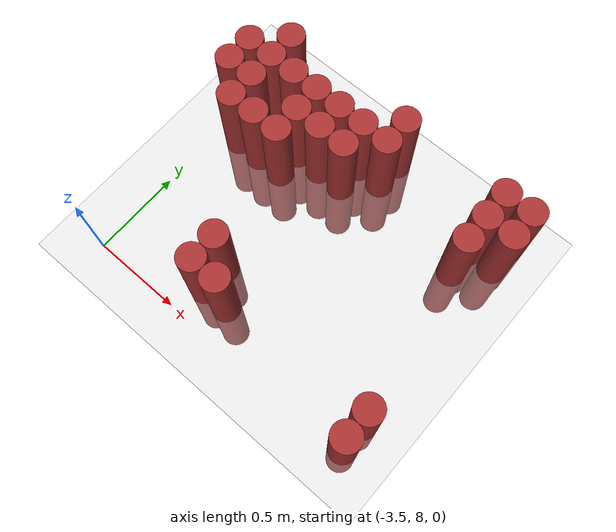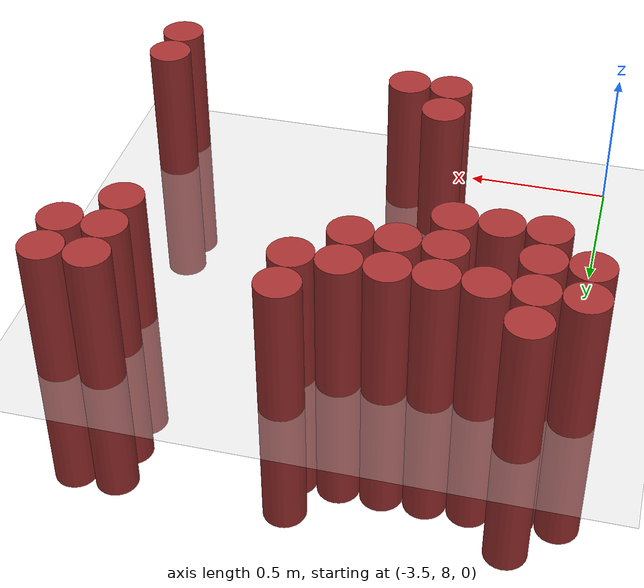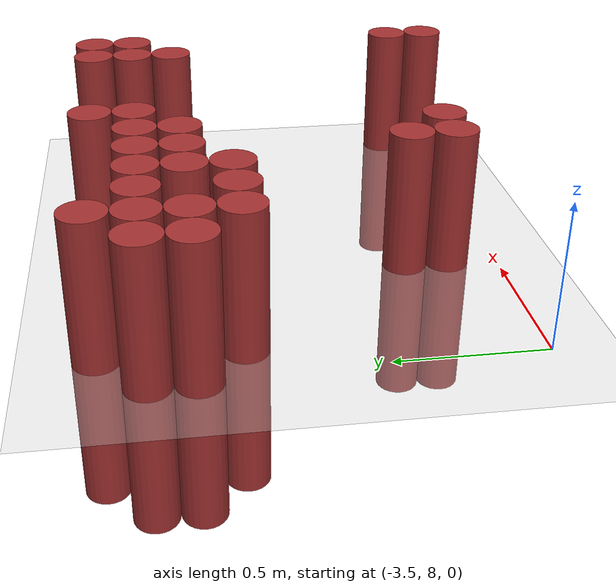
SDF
<sdf version="1.6">
 <world name="default">
  <model name="ground_plane">
   <static>1</static>
   <link name="link">
    <collision name="collision">
     <geometry><plane><normal>0 0 1</normal><size>100 100</size></plane></geometry>
     <surface><friction><ode><mu>100</mu><mu2>50</mu2></ode></friction></surface>
    </collision>
    <visual name="visual">
     <cast_shadows>0</cast_shadows>
     <geometry><plane><normal>0 0 1</normal><size>100 100</size></plane></geometry>
     <material>
      <script><uri>file://media/materials/scripts/gazebo.material</uri><name>Gazebo/Grey</name></script>
     </material>
    </visual>
   </link>
  </model>
  <model name="unit_cylinder_157">
   <static>1</static>
   <pose>-3.525000 9.075000 0.000000 0.000000 0.000000 0.000000</pose>
   <link name="link">
    <inertial>
     <mass>1</mass>
     <inertia><ixx>0.145833</ixx><ixy>0</ixy><ixz>0</ixz><iyy>0.145833</iyy><iyz>0</iyz><izz>0.125</izz></inertia>
    </inertial>
    <collision name="collision">
     <geometry><cylinder><radius>0.075000</radius><length>1</length></cylinder></geometry>
    </collision>
    <visual name="visual">
     <geometry><cylinder><radius>0.075000</radius><length>1</length></cylinder></geometry>
     <material>
      <ambient>0.648000 0.192000 0.192000 1</ambient>
      <diffuse>0.648000 0.192000 0.192000 1</diffuse>
     </material>
     <material>
      <script><name>Gazebo/Grey</name><uri>file://media/materials/scripts/gazebo.material</uri></script>
     </material>
    </visual>
   </link>
  </model>
  <model name="unit_cylinder_158">
   <static>1</static>
   <pose>-3.525000 9.225000 0.000000 0.000000 0.000000 0.000000</pose>
   <link name="link">
    <inertial>
     <mass>1</mass>
     <inertia><ixx>0.145833</ixx><ixy>0</ixy><ixz>0</ixz><iyy>0.145833</iyy><iyz>0</iyz><izz>0.125</izz></inertia>
    </inertial>
    <collision name="collision">
     <geometry><cylinder><radius>0.075000</radius><length>1</length></cylinder></geometry>
    </collision>
    <visual name="visual">
     <geometry><cylinder><radius>0.075000</radius><length>1</length></cylinder></geometry>
     <material>
      <ambient>0.648000 0.192000 0.192000 1</ambient>
      <diffuse>0.648000 0.192000 0.192000 1</diffuse>
     </material>
     <material>
      <script><name>Gazebo/Grey</name><uri>file://media/materials/scripts/gazebo.material</uri></script>
     </material>
    </visual>
   </link>
  </model>
  <model name="unit_cylinder_159">
   <static>1</static>
   <pose>-3.375000 8.925000 0.000000 0.000000 0.000000 0.000000</pose>
   <link name="link">
    <inertial>
     <mass>1</mass>
     <inertia><ixx>0.145833</ixx><ixy>0</ixy><ixz>0</ixz><iyy>0.145833</iyy><iyz>0</iyz><izz>0.125</izz></inertia>
    </inertial>
    <collision name="collision">
     <geometry><cylinder><radius>0.075000</radius><length>1</length></cylinder></geometry>
    </collision>
    <visual name="visual">
     <geometry><cylinder><radius>0.075000</radius><length>1</length></cylinder></geometry>
     <material>
      <ambient>0.648000 0.192000 0.192000 1</ambient>
      <diffuse>0.648000 0.192000 0.192000 1</diffuse>
     </material>
     <material>
      <script><name>Gazebo/Grey</name><uri>file://media/materials/scripts/gazebo.material</uri></script>
     </material>
    </visual>
   </link>
  </model>
  <model name="unit_cylinder_160">
   <static>1</static>
   <pose>-3.375000 9.075000 0.000000 0.000000 0.000000 0.000000</pose>
   <link name="link">
    <inertial>
     <mass>1</mass>
     <inertia><ixx>0.145833</ixx><ixy>0</ixy><ixz>0</ixz><iyy>0.145833</iyy><iyz>0</iyz><izz>0.125</izz></inertia>
    </inertial>
    <collision name="collision">
     <geometry><cylinder><radius>0.075000</radius><length>1</length></cylinder></geometry>
    </collision>
    <visual name="visual">
     <geometry><cylinder><radius>0.075000</radius><length>1</length></cylinder></geometry>
     <material>
      <ambient>0.648000 0.192000 0.192000 1</ambient>
      <diffuse>0.648000 0.192000 0.192000 1</diffuse>
     </material>
     <material>
      <script><name>Gazebo/Grey</name><uri>file://media/materials/scripts/gazebo.material</uri></script>
     </material>
    </visual>
   </link>
  </model>
  <model name="unit_cylinder_161">
   <static>1</static>
   <pose>-3.375000 9.225000 0.000000 0.000000 0.000000 0.000000</pose>
   <link name="link">
    <inertial>
     <mass>1</mass>
     <inertia><ixx>0.145833</ixx><ixy>0</ixy><ixz>0</ixz><iyy>0.145833</iyy><iyz>0</iyz><izz>0.125</izz></inertia>
    </inertial>
    <collision name="collision">
     <geometry><cylinder><radius>0.075000</radius><length>1</length></cylinder></geometry>
    </collision>
    <visual name="visual">
     <geometry><cylinder><radius>0.075000</radius><length>1</length></cylinder></geometry>
     <material>
      <ambient>0.648000 0.192000 0.192000 1</ambient>
      <diffuse>0.648000 0.192000 0.192000 1</diffuse>
     </material>
     <material>
      <script><name>Gazebo/Grey</name><uri>file://media/materials/scripts/gazebo.material</uri></script>
     </material>
    </visual>
   </link>
  </model>
  <model name="unit_cylinder_162">
   <static>1</static>
   <pose>-3.375000 9.375000 0.000000 0.000000 0.000000 0.000000</pose>
   <link name="link">
    <inertial>
     <mass>1</mass>
     <inertia><ixx>0.145833</ixx><ixy>0</ixy><ixz>0</ixz><iyy>0.145833</iyy><iyz>0</iyz><izz>0.125</izz></inertia>
    </inertial>
    <collision name="collision">
     <geometry><cylinder><radius>0.075000</radius><length>1</length></cylinder></geometry>
    </collision>
    <visual name="visual">
     <geometry><cylinder><radius>0.075000</radius><length>1</length></cylinder></geometry>
     <material>
      <ambient>0.648000 0.192000 0.192000 1</ambient>
      <diffuse>0.648000 0.192000 0.192000 1</diffuse>
     </material>
     <material>
      <script><name>Gazebo/Grey</name><uri>file://media/materials/scripts/gazebo.material</uri></script>
     </material>
    </visual>
   </link>
  </model>
  <model name="unit_cylinder_166">
   <static>1</static>
   <pose>-3.225000 8.925000 0.000000 0.000000 0.000000 0.000000</pose>
   <link name="link">
    <inertial>
     <mass>1</mass>
     <inertia><ixx>0.145833</ixx><ixy>0</ixy><ixz>0</ixz><iyy>0.145833</iyy><iyz>0</iyz><izz>0.125</izz></inertia>
    </inertial>
    <collision name="collision">
     <geometry><cylinder><radius>0.075000</radius><length>1</length></cylinder></geometry>
    </collision>
    <visual name="visual">
     <geometry><cylinder><radius>0.075000</radius><length>1</length></cylinder></geometry>
     <material>
      <ambient>0.648000 0.192000 0.192000 1</ambient>
      <diffuse>0.648000 0.192000 0.192000 1</diffuse>
     </material>
     <material>
      <script><name>Gazebo/Grey</name><uri>file://media/materials/scripts/gazebo.material</uri></script>
     </material>
    </visual>
   </link>
  </model>
  <model name="unit_cylinder_167">
   <static>1</static>
   <pose>-3.225000 9.225000 0.000000 0.000000 0.000000 0.000000</pose>
   <link name="link">
    <inertial>
     <mass>1</mass>
     <inertia><ixx>0.145833</ixx><ixy>0</ixy><ixz>0</ixz><iyy>0.145833</iyy><iyz>0</iyz><izz>0.125</izz></inertia>
    </inertial>
    <collision name="collision">
     <geometry><cylinder><radius>0.075000</radius><length>1</length></cylinder></geometry>
    </collision>
    <visual name="visual">
     <geometry><cylinder><radius>0.075000</radius><length>1</length></cylinder></geometry>
     <material>
      <ambient>0.648000 0.192000 0.192000 1</ambient>
      <diffuse>0.648000 0.192000 0.192000 1</diffuse>
     </material>
     <material>
      <script><name>Gazebo/Grey</name><uri>file://media/materials/scripts/gazebo.material</uri></script>
     </material>
    </visual>
   </link>
  </model>
  <model name="unit_cylinder_171">
   <static>1</static>
   <pose>-3.075000 8.925000 0.000000 0.000000 0.000000 0.000000</pose>
   <link name="link">
    <inertial>
     <mass>1</mass>
     <inertia><ixx>0.145833</ixx><ixy>0</ixy><ixz>0</ixz><iyy>0.145833</iyy><iyz>0</iyz><izz>0.125</izz></inertia>
    </inertial>
    <collision name="collision">
     <geometry><cylinder><radius>0.075000</radius><length>1</length></cylinder></geometry>
    </collision>
    <visual name="visual">
     <geometry><cylinder><radius>0.075000</radius><length>1</length></cylinder></geometry>
     <material>
      <ambient>0.648000 0.192000 0.192000 1</ambient>
      <diffuse>0.648000 0.192000 0.192000 1</diffuse>
     </material>
     <material>
      <script><name>Gazebo/Grey</name><uri>file://media/materials/scripts/gazebo.material</uri></script>
     </material>
    </visual>
   </link>
  </model>
  <model name="unit_cylinder_172">
   <static>1</static>
   <pose>-3.075000 9.075000 0.000000 0.000000 0.000000 0.000000</pose>
   <link name="link">
    <inertial>
     <mass>1</mass>
     <inertia><ixx>0.145833</ixx><ixy>0</ixy><ixz>0</ixz><iyy>0.145833</iyy><iyz>0</iyz><izz>0.125</izz></inertia>
    </inertial>
    <collision name="collision">
     <geometry><cylinder><radius>0.075000</radius><length>1</length></cylinder></geometry>
    </collision>
    <visual name="visual">
     <geometry><cylinder><radius>0.075000</radius><length>1</length></cylinder></geometry>
     <material>
      <ambient>0.648000 0.192000 0.192000 1</ambient>
      <diffuse>0.648000 0.192000 0.192000 1</diffuse>
     </material>
     <material>
      <script><name>Gazebo/Grey</name><uri>file://media/materials/scripts/gazebo.material</uri></script>
     </material>
    </visual>
   </link>
  </model>
  <model name="unit_cylinder_173">
   <static>1</static>
   <pose>-3.075000 9.225000 0.000000 0.000000 0.000000 0.000000</pose>
   <link name="link">
    <inertial>
     <mass>1</mass>
     <inertia><ixx>0.145833</ixx><ixy>0</ixy><ixz>0</ixz><iyy>0.145833</iyy><iyz>0</iyz><izz>0.125</izz></inertia>
    </inertial>
    <collision name="collision">
     <geometry><cylinder><radius>0.075000</radius><length>1</length></cylinder></geometry>
    </collision>
    <visual name="visual">
     <geometry><cylinder><radius>0.075000</radius><length>1</length></cylinder></geometry>
     <material>
      <ambient>0.648000 0.192000 0.192000 1</ambient>
      <diffuse>0.648000 0.192000 0.192000 1</diffuse>
     </material>
     <material>
      <script><name>Gazebo/Grey</name><uri>file://media/materials/scripts/gazebo.material</uri></script>
     </material>
    </visual>
   </link>
  </model>
  <model name="unit_cylinder_174">
   <static>1</static>
   <pose>-2.925000 8.175000 0.000000 0.000000 0.000000 0.000000</pose>
   <link name="link">
    <inertial>
     <mass>1</mass>
     <inertia><ixx>0.145833</ixx><ixy>0</ixy><ixz>0</ixz><iyy>0.145833</iyy><iyz>0</iyz><izz>0.125</izz></inertia>
    </inertial>
    <collision name="collision">
     <geometry><cylinder><radius>0.075000</radius><length>1</length></cylinder></geometry>
    </collision>
    <visual name="visual">
     <geometry><cylinder><radius>0.075000</radius><length>1</length></cylinder></geometry>
     <material>
      <ambient>0.648000 0.192000 0.192000 1</ambient>
      <diffuse>0.648000 0.192000 0.192000 1</diffuse>
     </material>
     <material>
      <script><name>Gazebo/Grey</name><uri>file://media/materials/scripts/gazebo.material</uri></script>
     </material>
    </visual>
   </link>
  </model>
  <model name="unit_cylinder_175">
   <static>1</static>
   <pose>-2.925000 8.325000 0.000000 0.000000 0.000000 0.000000</pose>
   <link name="link">
    <inertial>
     <mass>1</mass>
     <inertia><ixx>0.145833</ixx><ixy>0</ixy><ixz>0</ixz><iyy>0.145833</iyy><iyz>0</iyz><izz>0.125</izz></inertia>
    </inertial>
    <collision name="collision">
     <geometry><cylinder><radius>0.075000</radius><length>1</length></cylinder></geometry>
    </collision>
    <visual name="visual">
     <geometry><cylinder><radius>0.075000</radius><length>1</length></cylinder></geometry>
     <material>
      <ambient>0.648000 0.192000 0.192000 1</ambient>
      <diffuse>0.648000 0.192000 0.192000 1</diffuse>
     </material>
     <material>
      <script><name>Gazebo/Grey</name><uri>file://media/materials/scripts/gazebo.material</uri></script>
     </material>
    </visual>
   </link>
  </model>
  <model name="unit_cylinder_176">
   <static>1</static>
   <pose>-2.925000 9.075000 0.000000 0.000000 0.000000 0.000000</pose>
   <link name="link">
    <inertial>
     <mass>1</mass>
     <inertia><ixx>0.145833</ixx><ixy>0</ixy><ixz>0</ixz><iyy>0.145833</iyy><iyz>0</iyz><izz>0.125</izz></inertia>
    </inertial>
    <collision name="collision">
     <geometry><cylinder><radius>0.075000</radius><length>1</length></cylinder></geometry>
    </collision>
    <visual name="visual">
     <geometry><cylinder><radius>0.075000</radius><length>1</length></cylinder></geometry>
     <material>
      <ambient>0.648000 0.192000 0.192000 1</ambient>
      <diffuse>0.648000 0.192000 0.192000 1</diffuse>
     </material>
     <material>
      <script><name>Gazebo/Grey</name><uri>file://media/materials/scripts/gazebo.material</uri></script>
     </material>
    </visual>
   </link>
  </model>
  <model name="unit_cylinder_177">
   <static>1</static>
   <pose>-2.925000 9.225000 0.000000 0.000000 0.000000 0.000000</pose>
   <link name="link">
    <inertial>
     <mass>1</mass>
     <inertia><ixx>0.145833</ixx><ixy>0</ixy><ixz>0</ixz><iyy>0.145833</iyy><iyz>0</iyz><izz>0.125</izz></inertia>
    </inertial>
    <collision name="collision">
     <geometry><cylinder><radius>0.075000</radius><length>1</length></cylinder></geometry>
    </collision>
    <visual name="visual">
     <geometry><cylinder><radius>0.075000</radius><length>1</length></cylinder></geometry>
     <material>
      <ambient>0.648000 0.192000 0.192000 1</ambient>
      <diffuse>0.648000 0.192000 0.192000 1</diffuse>
     </material>
     <material>
      <script><name>Gazebo/Grey</name><uri>file://media/materials/scripts/gazebo.material</uri></script>
     </material>
    </visual>
   </link>
  </model>
  <model name="unit_cylinder_178">
   <static>1</static>
   <pose>-2.775000 8.175000 0.000000 0.000000 0.000000 0.000000</pose>
   <link name="link">
    <inertial>
     <mass>1</mass>
     <inertia><ixx>0.145833</ixx><ixy>0</ixy><ixz>0</ixz><iyy>0.145833</iyy><iyz>0</iyz><izz>0.125</izz></inertia>
    </inertial>
    <collision name="collision">
     <geometry><cylinder><radius>0.075000</radius><length>1</length></cylinder></geometry>
    </collision>
    <visual name="visual">
     <geometry><cylinder><radius>0.075000</radius><length>1</length></cylinder></geometry>
     <material>
      <ambient>0.648000 0.192000 0.192000 1</ambient>
      <diffuse>0.648000 0.192000 0.192000 1</diffuse>
     </material>
     <material>
      <script><name>Gazebo/Grey</name><uri>file://media/materials/scripts/gazebo.material</uri></script>
     </material>
    </visual>
   </link>
  </model>
  <model name="unit_cylinder_179">
   <static>1</static>
   <pose>-2.775000 9.075000 0.000000 0.000000 0.000000 0.000000</pose>
   <link name="link">
    <inertial>
     <mass>1</mass>
     <inertia><ixx>0.145833</ixx><ixy>0</ixy><ixz>0</ixz><iyy>0.145833</iyy><iyz>0</iyz><izz>0.125</izz></inertia>
    </inertial>
    <collision name="collision">
     <geometry><cylinder><radius>0.075000</radius><length>1</length></cylinder></geometry>
    </collision>
    <visual name="visual">
     <geometry><cylinder><radius>0.075000</radius><length>1</length></cylinder></geometry>
     <material>
      <ambient>0.648000 0.192000 0.192000 1</ambient>
      <diffuse>0.648000 0.192000 0.192000 1</diffuse>
     </material>
     <material>
      <script><name>Gazebo/Grey</name><uri>file://media/materials/scripts/gazebo.material</uri></script>
     </material>
    </visual>
   </link>
  </model>
  <model name="unit_cylinder_180">
   <static>1</static>
   <pose>-2.775000 9.225000 0.000000 0.000000 0.000000 0.000000</pose>
   <link name="link">
    <inertial>
     <mass>1</mass>
     <inertia><ixx>0.145833</ixx><ixy>0</ixy><ixz>0</ixz><iyy>0.145833</iyy><iyz>0</iyz><izz>0.125</izz></inertia>
    </inertial>
    <collision name="collision">
     <geometry><cylinder><radius>0.075000</radius><length>1</length></cylinder></geometry>
    </collision>
    <visual name="visual">
     <geometry><cylinder><radius>0.075000</radius><length>1</length></cylinder></geometry>
     <material>
      <ambient>0.648000 0.192000 0.192000 1</ambient>
      <diffuse>0.648000 0.192000 0.192000 1</diffuse>
     </material>
     <material>
      <script><name>Gazebo/Grey</name><uri>file://media/materials/scripts/gazebo.material</uri></script>
     </material>
    </visual>
   </link>
  </model>
  <model name="unit_cylinder_181">
   <static>1</static>
   <pose>-2.625000 9.225000 0.000000 0.000000 0.000000 0.000000</pose>
   <link name="link">
    <inertial>
     <mass>1</mass>
     <inertia><ixx>0.145833</ixx><ixy>0</ixy><ixz>0</ixz><iyy>0.145833</iyy><iyz>0</iyz><izz>0.125</izz></inertia>
    </inertial>
    <collision name="collision">
     <geometry><cylinder><radius>0.075000</radius><length>1</length></cylinder></geometry>
    </collision>
    <visual name="visual">
     <geometry><cylinder><radius>0.075000</radius><length>1</length></cylinder></geometry>
     <material>
      <ambient>0.648000 0.192000 0.192000 1</ambient>
      <diffuse>0.648000 0.192000 0.192000 1</diffuse>
     </material>
     <material>
      <script><name>Gazebo/Grey</name><uri>file://media/materials/scripts/gazebo.material</uri></script>
     </material>
    </visual>
   </link>
  </model>
  <model name="unit_cylinder_182">
   <static>1</static>
   <pose>-2.625000 9.375000 0.000000 0.000000 0.000000 0.000000</pose>
   <link name="link">
    <inertial>
     <mass>1</mass>
     <inertia><ixx>0.145833</ixx><ixy>0</ixy><ixz>0</ixz><iyy>0.145833</iyy><iyz>0</iyz><izz>0.125</izz></inertia>
    </inertial>
    <collision name="collision">
     <geometry><cylinder><radius>0.075000</radius><length>1</length></cylinder></geometry>
    </collision>
    <visual name="visual">
     <geometry><cylinder><radius>0.075000</radius><length>1</length></cylinder></geometry>
     <material>
      <ambient>0.648000 0.192000 0.192000 1</ambient>
      <diffuse>0.648000 0.192000 0.192000 1</diffuse>
     </material>
     <material>
      <script><name>Gazebo/Grey</name><uri>file://media/materials/scripts/gazebo.material</uri></script>
     </material>
    </visual>
   </link>
  </model>
  <model name="unit_cylinder_187">
   <static>1</static>
   <pose>-2.025000 9.075000 0.000000 0.000000 0.000000 0.000000</pose>
   <link name="link">
    <inertial>
     <mass>1</mass>
     <inertia><ixx>0.145833</ixx><ixy>0</ixy><ixz>0</ixz><iyy>0.145833</iyy><iyz>0</iyz><izz>0.125</izz></inertia>
    </inertial>
    <collision name="collision">
     <geometry><cylinder><radius>0.075000</radius><length>1</length></cylinder></geometry>
    </collision>
    <visual name="visual">
     <geometry><cylinder><radius>0.075000</radius><length>1</length></cylinder></geometry>
     <material>
      <ambient>0.648000 0.192000 0.192000 1</ambient>
      <diffuse>0.648000 0.192000 0.192000 1</diffuse>
     </material>
     <material>
      <script><name>Gazebo/Grey</name><uri>file://media/materials/scripts/gazebo.material</uri></script>
     </material>
    </visual>
   </link>
  </model>
  <model name="unit_cylinder_188">
   <static>1</static>
   <pose>-2.025000 9.225000 0.000000 0.000000 0.000000 0.000000</pose>
   <link name="link">
    <inertial>
     <mass>1</mass>
     <inertia><ixx>0.145833</ixx><ixy>0</ixy><ixz>0</ixz><iyy>0.145833</iyy><iyz>0</iyz><izz>0.125</izz></inertia>
    </inertial>
    <collision name="collision">
     <geometry><cylinder><radius>0.075000</radius><length>1</length></cylinder></geometry>
    </collision>
    <visual name="visual">
     <geometry><cylinder><radius>0.075000</radius><length>1</length></cylinder></geometry>
     <material>
      <ambient>0.648000 0.192000 0.192000 1</ambient>
      <diffuse>0.648000 0.192000 0.192000 1</diffuse>
     </material>
     <material>
      <script><name>Gazebo/Grey</name><uri>file://media/materials/scripts/gazebo.material</uri></script>
     </material>
    </visual>
   </link>
  </model>
  <model name="unit_cylinder_189">
   <static>1</static>
   <pose>-2.025000 9.375000 0.000000 0.000000 0.000000 0.000000</pose>
   <link name="link">
    <inertial>
     <mass>1</mass>
     <inertia><ixx>0.145833</ixx><ixy>0</ixy><ixz>0</ixz><iyy>0.145833</iyy><iyz>0</iyz><izz>0.125</izz></inertia>
    </inertial>
    <collision name="collision">
     <geometry><cylinder><radius>0.075000</radius><length>1</length></cylinder></geometry>
    </collision>
    <visual name="visual">
     <geometry><cylinder><radius>0.075000</radius><length>1</length></cylinder></geometry>
     <material>
      <ambient>0.648000 0.192000 0.192000 1</ambient>
      <diffuse>0.648000 0.192000 0.192000 1</diffuse>
     </material>
     <material>
      <script><name>Gazebo/Grey</name><uri>file://media/materials/scripts/gazebo.material</uri></script>
     </material>
    </visual>
   </link>
  </model>
  <model name="unit_cylinder_191">
   <static>1</static>
   <pose>-1.875000 8.025000 0.000000 0.000000 0.000000 0.000000</pose>
   <link name="link">
    <inertial>
     <mass>1</mass>
     <inertia><ixx>0.145833</ixx><ixy>0</ixy><ixz>0</ixz><iyy>0.145833</iyy><iyz>0</iyz><izz>0.125</izz></inertia>
    </inertial>
    <collision name="collision">
     <geometry><cylinder><radius>0.075000</radius><length>1</length></cylinder></geometry>
    </collision>
    <visual name="visual">
     <geometry><cylinder><radius>0.075000</radius><length>1</length></cylinder></geometry>
     <material>
      <ambient>0.648000 0.192000 0.192000 1</ambient>
      <diffuse>0.648000 0.192000 0.192000 1</diffuse>
     </material>
     <material>
      <script><name>Gazebo/Grey</name><uri>file://media/materials/scripts/gazebo.material</uri></script>
     </material>
    </visual>
   </link>
  </model>
  <model name="unit_cylinder_192">
   <static>1</static>
   <pose>-1.875000 8.175000 0.000000 0.000000 0.000000 0.000000</pose>
   <link name="link">
    <inertial>
     <mass>1</mass>
     <inertia><ixx>0.145833</ixx><ixy>0</ixy><ixz>0</ixz><iyy>0.145833</iyy><iyz>0</iyz><izz>0.125</izz></inertia>
    </inertial>
    <collision name="collision">
     <geometry><cylinder><radius>0.075000</radius><length>1</length></cylinder></geometry>
    </collision>
    <visual name="visual">
     <geometry><cylinder><radius>0.075000</radius><length>1</length></cylinder></geometry>
     <material>
      <ambient>0.648000 0.192000 0.192000 1</ambient>
      <diffuse>0.648000 0.192000 0.192000 1</diffuse>
     </material>
     <material>
      <script><name>Gazebo/Grey</name><uri>file://media/materials/scripts/gazebo.material</uri></script>
     </material>
    </visual>
   </link>
  </model>
  <model name="unit_cylinder_193">
   <static>1</static>
   <pose>-1.875000 9.225000 0.000000 0.000000 0.000000 0.000000</pose>
   <link name="link">
    <inertial>
     <mass>1</mass>
     <inertia><ixx>0.145833</ixx><ixy>0</ixy><ixz>0</ixz><iyy>0.145833</iyy><iyz>0</iyz><izz>0.125</izz></inertia>
    </inertial>
    <collision name="collision">
     <geometry><cylinder><radius>0.075000</radius><length>1</length></cylinder></geometry>
    </collision>
    <visual name="visual">
     <geometry><cylinder><radius>0.075000</radius><length>1</length></cylinder></geometry>
     <material>
      <ambient>0.648000 0.192000 0.192000 1</ambient>
      <diffuse>0.648000 0.192000 0.192000 1</diffuse>
     </material>
     <material>
      <script><name>Gazebo/Grey</name><uri>file://media/materials/scripts/gazebo.material</uri></script>
     </material>
    </visual>
   </link>
  </model>
  <model name="unit_cylinder_194">
   <static>1</static>
   <pose>-1.875000 9.375000 0.000000 0.000000 0.000000 0.000000</pose>
   <link name="link">
    <inertial>
     <mass>1</mass>
     <inertia><ixx>0.145833</ixx><ixy>0</ixy><ixz>0</ixz><iyy>0.145833</iyy><iyz>0</iyz><izz>0.125</izz></inertia>
    </inertial>
    <collision name="collision">
     <geometry><cylinder><radius>0.075000</radius><length>1</length></cylinder></geometry>
    </collision>
    <visual name="visual">
     <geometry><cylinder><radius>0.075000</radius><length>1</length></cylinder></geometry>
     <material>
      <ambient>0.648000 0.192000 0.192000 1</ambient>
      <diffuse>0.648000 0.192000 0.192000 1</diffuse>
     </material>
     <material>
      <script><name>Gazebo/Grey</name><uri>file://media/materials/scripts/gazebo.material</uri></script>
     </material>
    </visual>
   </link>
  </model>
 </world>
</sdf>
